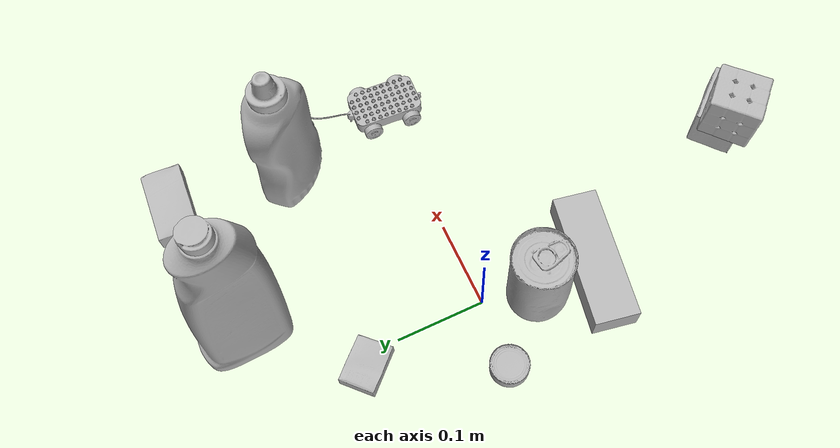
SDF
<sdf version="1.4">
  <world name="default">
    <light name="light1" type="point">
      <pose>0 0 1 0 0 0</pose>
      <diffuse>3 3 3 1</diffuse>
      <specular>3 3 3 1</specular>
    </light>
    <light name="light2" type="point">
      <pose>0 0.5 2 0 0 0</pose>
      <diffuse>1 1 1 1</diffuse>
      <specular>1 1 1 1</specular>
    </light>
    <light name="light3" type="point">
      <pose>0 0.5 2 0 0 0</pose>
      <diffuse>3 3 3 1</diffuse>
      <specular>3 3 3 1</specular>
    </light>
    <scene>
      <ambient>0.7 0.7 0.7</ambient>
    </scene>
    <model name="bottle1">
      <link name="link_bottle1">
        <collision name="default">
          <geometry>
            <mesh>
              <uri>model://bleach_cleanser/collision_meshes/collision.obj</uri>
              <scale>1.0 1.0 1.0</scale>
            </mesh>
          </geometry>
          <surface>
            <friction>
              <ode>
                <mu>0.5</mu>
                <mu2>0.5</mu2>
              </ode>
            </friction>
          <contact>
        <ode>
            <max_vel>0</max_vel>
            <min_depth>0.0001</min_depth>
            <kp>1e8</kp>
        </ode>
    </contact></surface>
        </collision>
        <visual name="default">
          <geometry>
            <mesh>
              <uri>model://bleach_cleanser/visual_meshes/visual.dae</uri>
              <scale>1.0 1.0 1.0</scale>
            </mesh>
          </geometry>
        </visual>
        <inertial>
          <mass>1.2697166204452515</mass>
          <pose>0.00012193183647468686 0.003783883061259985 -0.02442161738872528 -0.07381670616315505 0.00042011510954057825 -0.0068750724928957506</pose>
          <inertia>
            <ixx>0.0061798943</ixx>
            <iyy>0.0057587572</iyy>
            <izz>0.0010566014</izz>
            <ixy>0</ixy>
            <ixz>0</ixz>
            <iyz>0</iyz>
          </inertia>
        </inertial>
      </link>
      <pose>0.07834944874048233 0.24039967358112335 0.12578418850898743 -0.00020059551724619789 1.5749241139565755e-05 -3.102499493659007</pose>
    </model>
    <model name="bottle2">
      <link name="link_bottle2">
        <collision name="default">
          <geometry>
            <mesh>
              <uri>model://mustard_bottle/collision_meshes/collision.obj</uri>
              <scale>1.0 1.0 1.0</scale>
            </mesh>
          </geometry>
          <surface>
            <friction>
              <ode>
                <mu>0.5</mu>
                <mu2>0.5</mu2>
              </ode>
            </friction>
          <contact>
        <ode>
            <max_vel>0</max_vel>
            <min_depth>0.0001</min_depth>
            <kp>1e8</kp>
        </ode>
    </contact></surface>
        </collision>
        <visual name="default">
          <geometry>
            <mesh>
              <uri>model://mustard_bottle/visual_meshes/visual.dae</uri>
              <scale>1.0 1.0 1.0</scale>
            </mesh>
          </geometry>
        </visual>
        <inertial>
          <mass>0.7653017640113831</mass>
          <pose>0.000503245391882956 -0.00015647402324248105 -0.01747579500079155 0.0004182327658992807 0.0009465785893850277 0.024853714910462506</pose>
          <inertia>
            <ixx>0.0021251384</ixx>
            <iyy>0.0018646289</iyy>
            <izz>0.0005600813</izz>
            <ixy>0</ixy>
            <ixz>0</ixz>
            <iyz>0</iyz>
          </inertia>
        </inertial>
      </link>
      <pose>0.2370535135269165 0.12643089890480042 0.09615202248096466 1.494198545914254e-05 1.6743547441889274e-05 0.8292541736274406</pose>
    </model>
    <model name="toy1">
      <link name="link_toy1">
        <collision name="default">
          <geometry>
            <mesh>
              <uri>model://g_lego_duplo/collision_meshes/collision.obj</uri>
              <scale>0.5 0.5 0.5</scale>
            </mesh>
          </geometry>
          <surface>
            <friction>
              <ode>
                <mu>0.5</mu>
                <mu2>0.5</mu2>
              </ode>
            </friction>
          <contact>
        <ode>
            <max_vel>0</max_vel>
            <min_depth>0.0001</min_depth>
            <kp>1e8</kp>
        </ode>
    </contact></surface>
        </collision>
        <visual name="default">
          <geometry>
            <mesh>
              <uri>model://g_lego_duplo/visual_meshes/visual.dae</uri>
              <scale>0.5 0.5 0.5</scale>
            </mesh>
          </geometry>
        </visual>
        <inertial>
          <mass>0.058442164212465286</mass>
          <pose>-0.025023842230439186 0.0008777315961197019 0.0019403378246352077 0.010962970283690966 0.0381082459421261 -0.09653034831594848</pose>
          <inertia>
            <ixx>2.1170836e-05</ixx>
            <iyy>6.4006235e-05</iyy>
            <izz>8.007422e-05</izz>
            <ixy>0</ixy>
            <ixz>0</ixz>
            <iyz>0</iyz>
          </inertia>
        </inertial>
      </link>
      <pose>0.27300068736076355 0.02780754491686821 0.014983145520091057 -9.201873897754646e-05 -0.0035137332629093434 1.517191605021021</pose>
    </model>
    <model name="toy2">
      <link name="link_toy2">
        <collision name="default">
          <geometry>
            <mesh>
              <uri>model://foam_brick/collision_meshes/collision.obj</uri>
              <scale>1.0 1.0 1.0</scale>
            </mesh>
          </geometry>
          <surface>
            <friction>
              <ode>
                <mu>0.5</mu>
                <mu2>0.5</mu2>
              </ode>
            </friction>
          <contact>
        <ode>
            <max_vel>0</max_vel>
            <min_depth>0.0001</min_depth>
            <kp>1e8</kp>
        </ode>
    </contact></surface>
        </collision>
        <visual name="default">
          <geometry>
            <mesh>
              <uri>model://foam_brick/visual_meshes/visual.dae</uri>
              <scale>1.0 1.0 1.0</scale>
            </mesh>
          </geometry>
        </visual>
        <inertial>
          <mass>0.20487983524799347</mass>
          <pose>-0.0002522472059354186 0.0003458437859080732 -0.0002532101352699101 -0.2940200921298176 0.01727444945267686 -0.0007449878655710941</pose>
          <inertia>
            <ixx>8.9495355e-05</ixx>
            <iyy>0.0001428839</iyy>
            <izz>0.00014469978</izz>
            <ixy>0</ixy>
            <ixz>0</ixz>
            <iyz>0</iyz>
          </inertia>
        </inertial>
      </link>
      <pose>0.08561936020851135 -0.3548453152179718 0.025922704488039017 0.013470837953386517 0.004111786189372587 -0.8814710207871875</pose>
    </model>
    <model name="can1">
      <link name="link_can1">
        <collision name="default">
          <geometry>
            <mesh>
              <uri>model://tuna_fish_can/collision_meshes/collision.obj</uri>
              <scale>0.5 0.5 0.5</scale>
            </mesh>
          </geometry>
          <surface>
            <friction>
              <ode>
                <mu>0.5</mu>
                <mu2>0.5</mu2>
              </ode>
            </friction>
          <contact>
        <ode>
            <max_vel>0</max_vel>
            <min_depth>0.0001</min_depth>
            <kp>1e8</kp>
        </ode>
    </contact></surface>
        </collision>
        <visual name="default">
          <geometry>
            <mesh>
              <uri>model://tuna_fish_can/visual_meshes/visual.dae</uri>
              <scale>0.5 0.5 0.5</scale>
            </mesh>
          </geometry>
        </visual>
        <inertial>
          <mass>0.012491201050579548</mass>
          <pose>-2.036202567978762e-05 -7.256427124957554e-06 -0.0005269025568850338 -0.0017944782936896576 0.0001716245920406042 0.24054207470378652</pose>
          <inertia>
            <ixx>1.6888293e-06</ixx>
            <iyy>1.6817903e-06</iyy>
            <izz>2.889828e-06</izz>
            <ixy>0</ixy>
            <ixz>0</ixz>
            <iyz>0</iyz>
          </inertia>
        </inertial>
      </link>
      <pose>-0.07774349302053452 0.006575415376573801 0.00851999968290329 -3.0396757526222075e-09 -2.3644255528424643e-08 -1.9430219035928757</pose>
    </model>
    <model name="can2">
      <link name="link_can2">
        <collision name="default">
          <geometry>
            <mesh>
              <uri>model://tomato_soup_can/collision_meshes/collision.obj</uri>
              <scale>1.0 1.0 1.0</scale>
            </mesh>
          </geometry>
          <surface>
            <friction>
              <ode>
                <mu>0.5</mu>
                <mu2>0.5</mu2>
              </ode>
            </friction>
          <contact>
        <ode>
            <max_vel>0</max_vel>
            <min_depth>0.0001</min_depth>
            <kp>1e8</kp>
        </ode>
    </contact></surface>
        </collision>
        <visual name="default">
          <geometry>
            <mesh>
              <uri>model://tomato_soup_can/visual_meshes/visual.dae</uri>
              <scale>1.0 1.0 1.0</scale>
            </mesh>
          </geometry>
        </visual>
        <inertial>
          <mass>0.1827235370874405</mass>
          <pose>0.00012652271834667772 0.00010805515921674669 -0.0017973986687138677 0.007020070640758328 0.00042299385100205743 -0.009903366123441316</pose>
          <inertia>
            <ixx>0.00020034082</ixx>
            <iyy>0.00019918295</iyy>
            <izz>0.00010383482</izz>
            <ixy>0</ixy>
            <ixz>0</ixz>
            <iyz>0</iyz>
          </inertia>
        </inertial>
      </link>
      <pose>-0.016317207366228104 -0.057732392102479935 0.05127401649951935 -4.865327994594669e-07 -3.9673186710660606e-07 -0.1278611129110226</pose>
    </model>
    <model name="box1">
      <link name="link_box1">
        <collision name="default">
          <geometry>
            <mesh>
              <uri>model://jenga/collision_meshes/collision.obj</uri>
              <scale>1.0 1.0 1.0</scale>
            </mesh>
          </geometry>
          <surface>
            <friction>
              <ode>
                <mu>0.5</mu>
                <mu2>0.5</mu2>
              </ode>
            </friction>
          <contact>
        <ode>
            <max_vel>0</max_vel>
            <min_depth>0.0001</min_depth>
            <kp>1e8</kp>
        </ode>
    </contact></surface>
        </collision>
        <visual name="default">
          <geometry>
            <mesh>
              <uri>model://jenga/visual_meshes/visual.dae</uri>
              <scale>1.0 1.0 1.0</scale>
            </mesh>
          </geometry>
        </visual>
        <inertial>
          <mass>0.23032541573047638</mass>
          <pose>-2.502855807051674e-07 -0.00010250010382151231 -4.0923401684267446e-05 0.0 -7.342154049184251e-07 0.0</pose>
          <inertia>
            <ixx>6.3736625e-05</ixx>
            <iyy>0.00043187768</iyy>
            <izz>0.00046106614</izz>
            <ixy>0</ixy>
            <ixz>0</ixz>
            <iyz>0</iyz>
          </inertia>
        </inertial>
      </link>
      <pose>-0.012971499934792519 -0.12899424135684967 0.014999999664723873 -5.15896693449751e-09 6.6325741317488335e-09 2.9547008580852574</pose>
    </model>
    <model name="box2">
      <link name="link_box2">
        <collision name="default">
          <geometry>
            <mesh>
              <uri>model://cracker_box/collision_meshes/collision.obj</uri>
              <scale>0.25 0.25 0.25</scale>
            </mesh>
          </geometry>
          <surface>
            <friction>
              <ode>
                <mu>0.5</mu>
                <mu2>0.5</mu2>
              </ode>
            </friction>
          <contact>
        <ode>
            <max_vel>0</max_vel>
            <min_depth>0.0001</min_depth>
            <kp>1e8</kp>
        </ode>
    </contact></surface>
        </collision>
        <visual name="default">
          <geometry>
            <mesh>
              <uri>model://cracker_box/visual_meshes/visual.dae</uri>
              <scale>0.25 0.25 0.25</scale>
            </mesh>
          </geometry>
        </visual>
        <inertial>
          <mass>0.037928901612758636</mass>
          <pose>0.0002366034168517217 6.358561222441494e-05 -0.000425738311605528 -0.00031620771242973385 -0.011106489600347247 0.002546794536796529</pose>
          <inertia>
            <ixx>6.029637e-06</ixx>
            <iyy>9.956116e-06</iyy>
            <izz>1.420829e-05</izz>
            <ixy>0</ixy>
            <ixz>0</ixz>
            <iyz>0</iyz>
          </inertia>
        </inertial>
      </link>
      <pose>-0.012615406885743141 0.1407434046268463 0.009120453149080276 -0.011787932444641075 -0.007367184706587696 -0.8121534618003349</pose>
    </model>
    <model name="box3">
      <link name="link_box3">
        <collision name="default">
          <geometry>
            <mesh>
              <uri>model://sugar_box/collision_meshes/collision.obj</uri>
              <scale>0.5 0.5 0.5</scale>
            </mesh>
          </geometry>
          <surface>
            <friction>
              <ode>
                <mu>0.5</mu>
                <mu2>0.5</mu2>
              </ode>
            </friction>
          <contact>
        <ode>
            <max_vel>0</max_vel>
            <min_depth>0.0001</min_depth>
            <kp>1e8</kp>
        </ode>
    </contact></surface>
        </collision>
        <visual name="default">
          <geometry>
            <mesh>
              <uri>model://sugar_box/visual_meshes/visual.dae</uri>
              <scale>0.5 0.5 0.5</scale>
            </mesh>
          </geometry>
        </visual>
        <inertial>
          <mass>0.11577744781970978</mass>
          <pose>0.0005171863595023751 1.9245549992774613e-05 -0.00018182402709499002 -0.0004046260967602003 0.0010506636382171825 0.002615378323343388</pose>
          <inertia>
            <ixx>2.4116362e-05</ixx>
            <iyy>7.7949044e-05</iyy>
            <izz>9.3314295e-05</izz>
            <ixy>0</ixy>
            <ixz>0</ixz>
            <iyz>0</iyz>
          </inertia>
        </inertial>
      </link>
      <pose>0.25266149640083313 0.268322616815567 0.011399304494261742 0.0007744285196009785 -0.023432975255069658 3.0921120216581666</pose>
    </model>
    <model name="box4">
      <link name="link_box4">
        <collision name="default">
          <geometry>
            <mesh>
              <uri>model://rubiks_cube/collision_meshes/collision.obj</uri>
              <scale>1.0 1.0 1.0</scale>
            </mesh>
          </geometry>
          <surface>
            <friction>
              <ode>
                <mu>0.5</mu>
                <mu2>0.5</mu2>
              </ode>
            </friction>
          <contact>
        <ode>
            <max_vel>0</max_vel>
            <min_depth>0.0001</min_depth>
            <kp>1e8</kp>
        </ode>
    </contact></surface>
        </collision>
        <visual name="default">
          <geometry>
            <mesh>
              <uri>model://rubiks_cube/visual_meshes/visual.dae</uri>
              <scale>1.0 1.0 1.0</scale>
            </mesh>
          </geometry>
        </visual>
        <inertial>
          <mass>0.277982622385025</mass>
          <pose>2.6721041649580002e-05 5.2569666877388954e-05 -7.264316082000732e-06 -0.05467259342135701 -0.09814005995908277 -0.03445491653702878</pose>
          <inertia>
            <ixx>0.00015360407</ixx>
            <iyy>0.00015288773</iyy>
            <izz>0.00015487692</izz>
            <ixy>0</ixy>
            <ixz>0</ixz>
            <iyz>0</iyz>
          </inertia>
        </inertial>
      </link>
      <pose>0.061483338475227356 -0.3382505774497986 0.08016727864742279 -0.01630837217023706 -0.010477336007287256 2.322276761312312</pose>
    </model>
  <physics type="ode">
      <max_contacts>50</max_contacts>
      <ode>
        <solver>
          <type>quick</type>
          <iters>75</iters>
        </solver>
        <constraints>
          <contact_max_correcting_vel>0</contact_max_correcting_vel>
          <contact_surface_layer>0</contact_surface_layer>
        </constraints>
      </ode>
    </physics></world>
</sdf>
